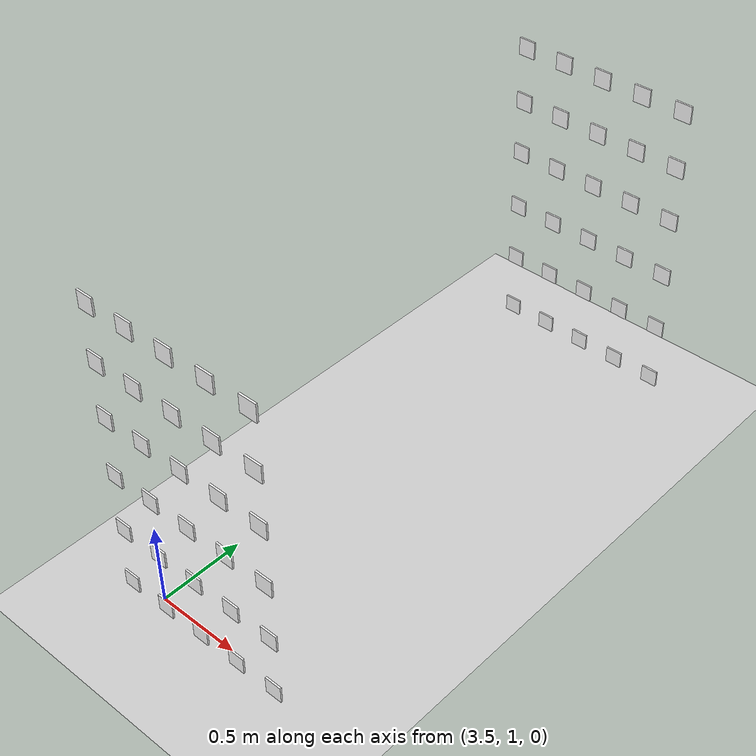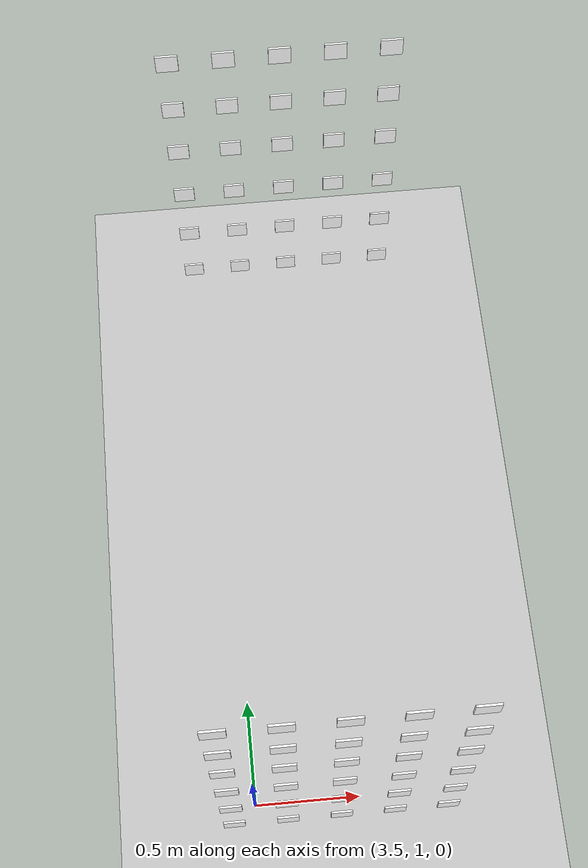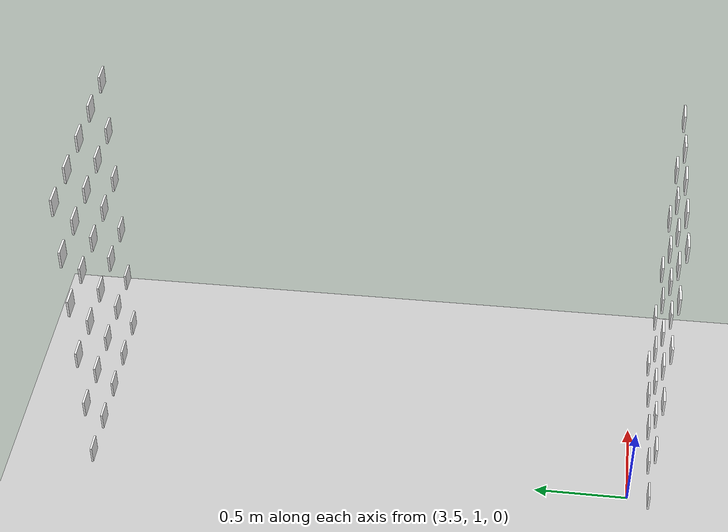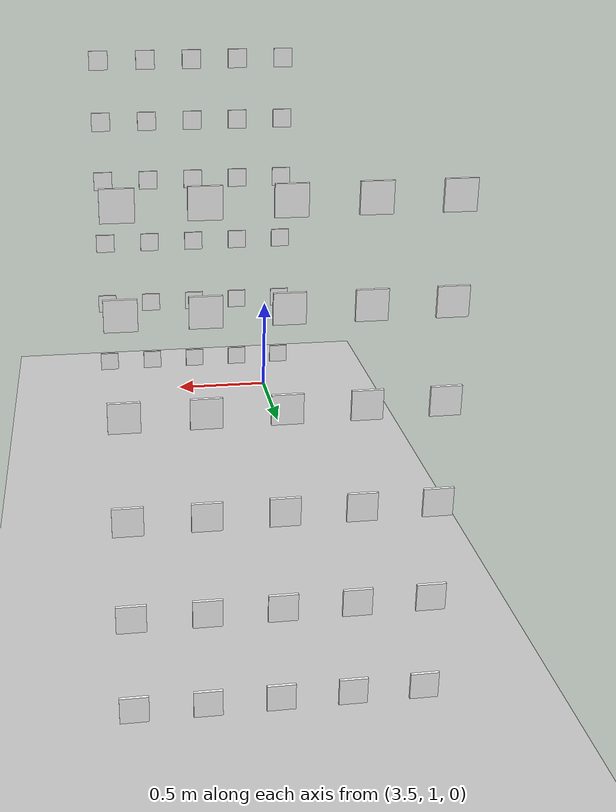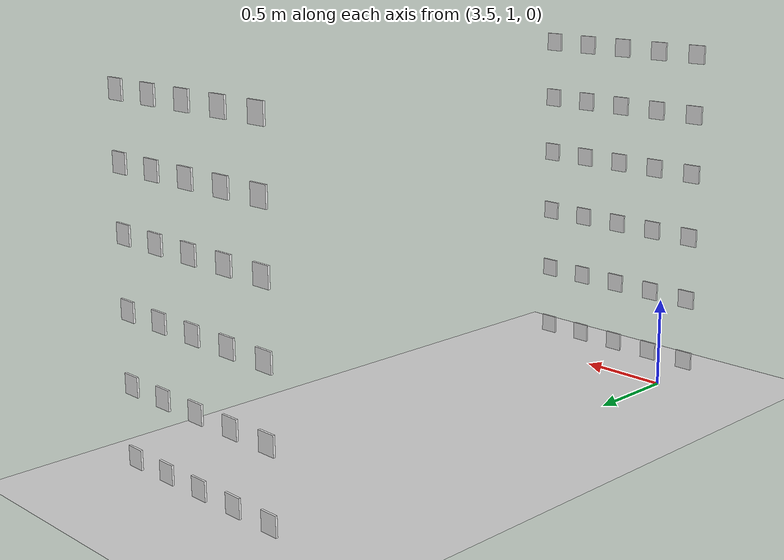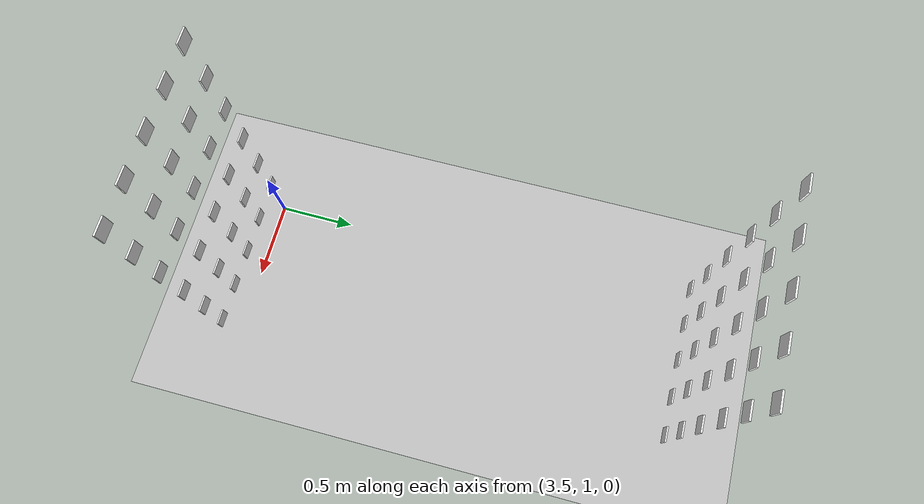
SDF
<sdf version="1.6">
 <world name="default">
  <include><uri>model://ground_plane</uri></include>
  <include><uri>model://sun</uri></include>
  <model name="stag_r1c3_l1_m1">
   <static>true</static>
   <pose>4.4 0.9 0.146 1.5708 0 0</pose>
   <link name="marker_link">
    <collision name="collision"><geometry><box><size>0.1 0.1 0.01</size></box></geometry></collision>
    <visual name="visual">
     <geometry><box><size>0.1 0.1 0.01</size></box></geometry>
     <material>
      <script>
       <uri>model://STag_marker/materials/scripts</uri>
       <uri>model://STag_marker/materials/textures</uri>
       <name>STagMarker/marker_01824</name>
      </script>
      <ambient>1 1 1 1</ambient>
      <diffuse>1 1 1 1</diffuse>
     </material>
     <pose>0 0 0.001 0 0 0</pose>
    </visual>
   </link>
  </model>
  <model name="stag_r1c3_l1_m2">
   <static>true</static>
   <pose>4.15 0.9 0.146 1.5708 0 0</pose>
   <link name="marker_link">
    <collision name="collision"><geometry><box><size>0.1 0.1 0.01</size></box></geometry></collision>
    <visual name="visual">
     <geometry><box><size>0.1 0.1 0.01</size></box></geometry>
     <material>
      <script>
       <uri>model://STag_marker/materials/scripts</uri>
       <uri>model://STag_marker/materials/textures</uri>
       <name>STagMarker/marker_01862</name>
      </script>
      <ambient>1 1 1 1</ambient>
      <diffuse>1 1 1 1</diffuse>
     </material>
     <pose>0 0 0.001 0 0 0</pose>
    </visual>
   </link>
  </model>
  <model name="stag_r1c3_l1_m3">
   <static>true</static>
   <pose>3.9000000000000004 0.9 0.146 1.5708 0 0</pose>
   <link name="marker_link">
    <collision name="collision"><geometry><box><size>0.1 0.1 0.01</size></box></geometry></collision>
    <visual name="visual">
     <geometry><box><size>0.1 0.1 0.01</size></box></geometry>
     <material>
      <script>
       <uri>model://STag_marker/materials/scripts</uri>
       <uri>model://STag_marker/materials/textures</uri>
       <name>STagMarker/marker_01928</name>
      </script>
      <ambient>1 1 1 1</ambient>
      <diffuse>1 1 1 1</diffuse>
     </material>
     <pose>0 0 0.001 0 0 0</pose>
    </visual>
   </link>
  </model>
  <model name="stag_r1c3_l1_m4">
   <static>true</static>
   <pose>3.6500000000000004 0.9 0.146 1.5708 0 0</pose>
   <link name="marker_link">
    <collision name="collision"><geometry><box><size>0.1 0.1 0.01</size></box></geometry></collision>
    <visual name="visual">
     <geometry><box><size>0.1 0.1 0.01</size></box></geometry>
     <material>
      <script>
       <uri>model://STag_marker/materials/scripts</uri>
       <uri>model://STag_marker/materials/textures</uri>
       <name>STagMarker/marker_01999</name>
      </script>
      <ambient>1 1 1 1</ambient>
      <diffuse>1 1 1 1</diffuse>
     </material>
     <pose>0 0 0.001 0 0 0</pose>
    </visual>
   </link>
  </model>
  <model name="stag_r1c3_l1_m5">
   <static>true</static>
   <pose>3.4000000000000004 0.9 0.146 1.5708 0 0</pose>
   <link name="marker_link">
    <collision name="collision"><geometry><box><size>0.1 0.1 0.01</size></box></geometry></collision>
    <visual name="visual">
     <geometry><box><size>0.1 0.1 0.01</size></box></geometry>
     <material>
      <script>
       <uri>model://STag_marker/materials/scripts</uri>
       <uri>model://STag_marker/materials/textures</uri>
       <name>STagMarker/marker_02027</name>
      </script>
      <ambient>1 1 1 1</ambient>
      <diffuse>1 1 1 1</diffuse>
     </material>
     <pose>0 0 0.001 0 0 0</pose>
    </visual>
   </link>
  </model>
  <model name="stag_r1c3_l2_m1">
   <static>true</static>
   <pose>4.4 0.9 0.506 1.5708 0 0</pose>
   <link name="marker_link">
    <collision name="collision"><geometry><box><size>0.1 0.1 0.01</size></box></geometry></collision>
    <visual name="visual">
     <geometry><box><size>0.1 0.1 0.01</size></box></geometry>
     <material>
      <script>
       <uri>model://STag_marker/materials/scripts</uri>
       <uri>model://STag_marker/materials/textures</uri>
       <name>STagMarker/marker_02149</name>
      </script>
      <ambient>1 1 1 1</ambient>
      <diffuse>1 1 1 1</diffuse>
     </material>
     <pose>0 0 0.001 0 0 0</pose>
    </visual>
   </link>
  </model>
  <model name="stag_r1c3_l2_m2">
   <static>true</static>
   <pose>4.15 0.9 0.506 1.5708 0 0</pose>
   <link name="marker_link">
    <collision name="collision"><geometry><box><size>0.1 0.1 0.01</size></box></geometry></collision>
    <visual name="visual">
     <geometry><box><size>0.1 0.1 0.01</size></box></geometry>
     <material>
      <script>
       <uri>model://STag_marker/materials/scripts</uri>
       <uri>model://STag_marker/materials/textures</uri>
       <name>STagMarker/marker_02234</name>
      </script>
      <ambient>1 1 1 1</ambient>
      <diffuse>1 1 1 1</diffuse>
     </material>
     <pose>0 0 0.001 0 0 0</pose>
    </visual>
   </link>
  </model>
  <model name="stag_r1c3_l2_m3">
   <static>true</static>
   <pose>3.9000000000000004 0.9 0.506 1.5708 0 0</pose>
   <link name="marker_link">
    <collision name="collision"><geometry><box><size>0.1 0.1 0.01</size></box></geometry></collision>
    <visual name="visual">
     <geometry><box><size>0.1 0.1 0.01</size></box></geometry>
     <material>
      <script>
       <uri>model://STag_marker/materials/scripts</uri>
       <uri>model://STag_marker/materials/textures</uri>
       <name>STagMarker/marker_02269</name>
      </script>
      <ambient>1 1 1 1</ambient>
      <diffuse>1 1 1 1</diffuse>
     </material>
     <pose>0 0 0.001 0 0 0</pose>
    </visual>
   </link>
  </model>
  <model name="stag_r1c3_l2_m4">
   <static>true</static>
   <pose>3.6500000000000004 0.9 0.506 1.5708 0 0</pose>
   <link name="marker_link">
    <collision name="collision"><geometry><box><size>0.1 0.1 0.01</size></box></geometry></collision>
    <visual name="visual">
     <geometry><box><size>0.1 0.1 0.01</size></box></geometry>
     <material>
      <script>
       <uri>model://STag_marker/materials/scripts</uri>
       <uri>model://STag_marker/materials/textures</uri>
       <name>STagMarker/marker_02275</name>
      </script>
      <ambient>1 1 1 1</ambient>
      <diffuse>1 1 1 1</diffuse>
     </material>
     <pose>0 0 0.001 0 0 0</pose>
    </visual>
   </link>
  </model>
  <model name="stag_r1c3_l2_m5">
   <static>true</static>
   <pose>3.4000000000000004 0.9 0.506 1.5708 0 0</pose>
   <link name="marker_link">
    <collision name="collision"><geometry><box><size>0.1 0.1 0.01</size></box></geometry></collision>
    <visual name="visual">
     <geometry><box><size>0.1 0.1 0.01</size></box></geometry>
     <material>
      <script>
       <uri>model://STag_marker/materials/scripts</uri>
       <uri>model://STag_marker/materials/textures</uri>
       <name>STagMarker/marker_02288</name>
      </script>
      <ambient>1 1 1 1</ambient>
      <diffuse>1 1 1 1</diffuse>
     </material>
     <pose>0 0 0.001 0 0 0</pose>
    </visual>
   </link>
  </model>
  <model name="stag_r1c3_l3_m1">
   <static>true</static>
   <pose>4.4 0.9 0.867 1.5708 0 0</pose>
   <link name="marker_link">
    <collision name="collision"><geometry><box><size>0.1 0.1 0.01</size></box></geometry></collision>
    <visual name="visual">
     <geometry><box><size>0.1 0.1 0.01</size></box></geometry>
     <material>
      <script>
       <uri>model://STag_marker/materials/scripts</uri>
       <uri>model://STag_marker/materials/textures</uri>
       <name>STagMarker/marker_02346</name>
      </script>
      <ambient>1 1 1 1</ambient>
      <diffuse>1 1 1 1</diffuse>
     </material>
     <pose>0 0 0.001 0 0 0</pose>
    </visual>
   </link>
  </model>
  <model name="stag_r1c3_l3_m2">
   <static>true</static>
   <pose>4.15 0.9 0.867 1.5708 0 0</pose>
   <link name="marker_link">
    <collision name="collision"><geometry><box><size>0.1 0.1 0.01</size></box></geometry></collision>
    <visual name="visual">
     <geometry><box><size>0.1 0.1 0.01</size></box></geometry>
     <material>
      <script>
       <uri>model://STag_marker/materials/scripts</uri>
       <uri>model://STag_marker/materials/textures</uri>
       <name>STagMarker/marker_02365</name>
      </script>
      <ambient>1 1 1 1</ambient>
      <diffuse>1 1 1 1</diffuse>
     </material>
     <pose>0 0 0.001 0 0 0</pose>
    </visual>
   </link>
  </model>
  <model name="stag_r1c3_l3_m3">
   <static>true</static>
   <pose>3.9000000000000004 0.9 0.867 1.5708 0 0</pose>
   <link name="marker_link">
    <collision name="collision"><geometry><box><size>0.1 0.1 0.01</size></box></geometry></collision>
    <visual name="visual">
     <geometry><box><size>0.1 0.1 0.01</size></box></geometry>
     <material>
      <script>
       <uri>model://STag_marker/materials/scripts</uri>
       <uri>model://STag_marker/materials/textures</uri>
       <name>STagMarker/marker_00219</name>
      </script>
      <ambient>1 1 1 1</ambient>
      <diffuse>1 1 1 1</diffuse>
     </material>
     <pose>0 0 0.001 0 0 0</pose>
    </visual>
   </link>
  </model>
  <model name="stag_r1c3_l3_m4">
   <static>true</static>
   <pose>3.6500000000000004 0.9 0.867 1.5708 0 0</pose>
   <link name="marker_link">
    <collision name="collision"><geometry><box><size>0.1 0.1 0.01</size></box></geometry></collision>
    <visual name="visual">
     <geometry><box><size>0.1 0.1 0.01</size></box></geometry>
     <material>
      <script>
       <uri>model://STag_marker/materials/scripts</uri>
       <uri>model://STag_marker/materials/textures</uri>
       <name>STagMarker/marker_00261</name>
      </script>
      <ambient>1 1 1 1</ambient>
      <diffuse>1 1 1 1</diffuse>
     </material>
     <pose>0 0 0.001 0 0 0</pose>
    </visual>
   </link>
  </model>
  <model name="stag_r1c3_l3_m5">
   <static>true</static>
   <pose>3.4000000000000004 0.9 0.867 1.5708 0 0</pose>
   <link name="marker_link">
    <collision name="collision"><geometry><box><size>0.1 0.1 0.01</size></box></geometry></collision>
    <visual name="visual">
     <geometry><box><size>0.1 0.1 0.01</size></box></geometry>
     <material>
      <script>
       <uri>model://STag_marker/materials/scripts</uri>
       <uri>model://STag_marker/materials/textures</uri>
       <name>STagMarker/marker_00426</name>
      </script>
      <ambient>1 1 1 1</ambient>
      <diffuse>1 1 1 1</diffuse>
     </material>
     <pose>0 0 0.001 0 0 0</pose>
    </visual>
   </link>
  </model>
  <model name="stag_r1c3_l4_m1">
   <static>true</static>
   <pose>4.4 0.9 1.227 1.5708 0 0</pose>
   <link name="marker_link">
    <collision name="collision"><geometry><box><size>0.1 0.1 0.01</size></box></geometry></collision>
    <visual name="visual">
     <geometry><box><size>0.1 0.1 0.01</size></box></geometry>
     <material>
      <script>
       <uri>model://STag_marker/materials/scripts</uri>
       <uri>model://STag_marker/materials/textures</uri>
       <name>STagMarker/marker_00519</name>
      </script>
      <ambient>1 1 1 1</ambient>
      <diffuse>1 1 1 1</diffuse>
     </material>
     <pose>0 0 0.001 0 0 0</pose>
    </visual>
   </link>
  </model>
  <model name="stag_r1c3_l4_m2">
   <static>true</static>
   <pose>4.15 0.9 1.227 1.5708 0 0</pose>
   <link name="marker_link">
    <collision name="collision"><geometry><box><size>0.1 0.1 0.01</size></box></geometry></collision>
    <visual name="visual">
     <geometry><box><size>0.1 0.1 0.01</size></box></geometry>
     <material>
      <script>
       <uri>model://STag_marker/materials/scripts</uri>
       <uri>model://STag_marker/materials/textures</uri>
       <name>STagMarker/marker_00525</name>
      </script>
      <ambient>1 1 1 1</ambient>
      <diffuse>1 1 1 1</diffuse>
     </material>
     <pose>0 0 0.001 0 0 0</pose>
    </visual>
   </link>
  </model>
  <model name="stag_r1c3_l4_m3">
   <static>true</static>
   <pose>3.9000000000000004 0.9 1.227 1.5708 0 0</pose>
   <link name="marker_link">
    <collision name="collision"><geometry><box><size>0.1 0.1 0.01</size></box></geometry></collision>
    <visual name="visual">
     <geometry><box><size>0.1 0.1 0.01</size></box></geometry>
     <material>
      <script>
       <uri>model://STag_marker/materials/scripts</uri>
       <uri>model://STag_marker/materials/textures</uri>
       <name>STagMarker/marker_00526</name>
      </script>
      <ambient>1 1 1 1</ambient>
      <diffuse>1 1 1 1</diffuse>
     </material>
     <pose>0 0 0.001 0 0 0</pose>
    </visual>
   </link>
  </model>
  <model name="stag_r1c3_l4_m4">
   <static>true</static>
   <pose>3.6500000000000004 0.9 1.227 1.5708 0 0</pose>
   <link name="marker_link">
    <collision name="collision"><geometry><box><size>0.1 0.1 0.01</size></box></geometry></collision>
    <visual name="visual">
     <geometry><box><size>0.1 0.1 0.01</size></box></geometry>
     <material>
      <script>
       <uri>model://STag_marker/materials/scripts</uri>
       <uri>model://STag_marker/materials/textures</uri>
       <name>STagMarker/marker_00537</name>
      </script>
      <ambient>1 1 1 1</ambient>
      <diffuse>1 1 1 1</diffuse>
     </material>
     <pose>0 0 0.001 0 0 0</pose>
    </visual>
   </link>
  </model>
  <model name="stag_r1c3_l4_m5">
   <static>true</static>
   <pose>3.4000000000000004 0.9 1.227 1.5708 0 0</pose>
   <link name="marker_link">
    <collision name="collision"><geometry><box><size>0.1 0.1 0.01</size></box></geometry></collision>
    <visual name="visual">
     <geometry><box><size>0.1 0.1 0.01</size></box></geometry>
     <material>
      <script>
       <uri>model://STag_marker/materials/scripts</uri>
       <uri>model://STag_marker/materials/textures</uri>
       <name>STagMarker/marker_00563</name>
      </script>
      <ambient>1 1 1 1</ambient>
      <diffuse>1 1 1 1</diffuse>
     </material>
     <pose>0 0 0.001 0 0 0</pose>
    </visual>
   </link>
  </model>
  <model name="stag_r1c3_l5_m1">
   <static>true</static>
   <pose>4.4 0.9 1.556 1.5708 0 0</pose>
   <link name="marker_link">
    <collision name="collision"><geometry><box><size>0.1 0.1 0.01</size></box></geometry></collision>
    <visual name="visual">
     <geometry><box><size>0.1 0.1 0.01</size></box></geometry>
     <material>
      <script>
       <uri>model://STag_marker/materials/scripts</uri>
       <uri>model://STag_marker/materials/textures</uri>
       <name>STagMarker/marker_00578</name>
      </script>
      <ambient>1 1 1 1</ambient>
      <diffuse>1 1 1 1</diffuse>
     </material>
     <pose>0 0 0.001 0 0 0</pose>
    </visual>
   </link>
  </model>
  <model name="stag_r1c3_l5_m2">
   <static>true</static>
   <pose>4.15 0.9 1.556 1.5708 0 0</pose>
   <link name="marker_link">
    <collision name="collision"><geometry><box><size>0.1 0.1 0.01</size></box></geometry></collision>
    <visual name="visual">
     <geometry><box><size>0.1 0.1 0.01</size></box></geometry>
     <material>
      <script>
       <uri>model://STag_marker/materials/scripts</uri>
       <uri>model://STag_marker/materials/textures</uri>
       <name>STagMarker/marker_00679</name>
      </script>
      <ambient>1 1 1 1</ambient>
      <diffuse>1 1 1 1</diffuse>
     </material>
     <pose>0 0 0.001 0 0 0</pose>
    </visual>
   </link>
  </model>
  <model name="stag_r1c3_l5_m3">
   <static>true</static>
   <pose>3.9000000000000004 0.9 1.556 1.5708 0 0</pose>
   <link name="marker_link">
    <collision name="collision"><geometry><box><size>0.1 0.1 0.01</size></box></geometry></collision>
    <visual name="visual">
     <geometry><box><size>0.1 0.1 0.01</size></box></geometry>
     <material>
      <script>
       <uri>model://STag_marker/materials/scripts</uri>
       <uri>model://STag_marker/materials/textures</uri>
       <name>STagMarker/marker_00800</name>
      </script>
      <ambient>1 1 1 1</ambient>
      <diffuse>1 1 1 1</diffuse>
     </material>
     <pose>0 0 0.001 0 0 0</pose>
    </visual>
   </link>
  </model>
  <model name="stag_r1c3_l5_m4">
   <static>true</static>
   <pose>3.6500000000000004 0.9 1.556 1.5708 0 0</pose>
   <link name="marker_link">
    <collision name="collision"><geometry><box><size>0.1 0.1 0.01</size></box></geometry></collision>
    <visual name="visual">
     <geometry><box><size>0.1 0.1 0.01</size></box></geometry>
     <material>
      <script>
       <uri>model://STag_marker/materials/scripts</uri>
       <uri>model://STag_marker/materials/textures</uri>
       <name>STagMarker/marker_00848</name>
      </script>
      <ambient>1 1 1 1</ambient>
      <diffuse>1 1 1 1</diffuse>
     </material>
     <pose>0 0 0.001 0 0 0</pose>
    </visual>
   </link>
  </model>
  <model name="stag_r1c3_l5_m5">
   <static>true</static>
   <pose>3.4000000000000004 0.9 1.556 1.5708 0 0</pose>
   <link name="marker_link">
    <collision name="collision"><geometry><box><size>0.1 0.1 0.01</size></box></geometry></collision>
    <visual name="visual">
     <geometry><box><size>0.1 0.1 0.01</size></box></geometry>
     <material>
      <script>
       <uri>model://STag_marker/materials/scripts</uri>
       <uri>model://STag_marker/materials/textures</uri>
       <name>STagMarker/marker_01138</name>
      </script>
      <ambient>1 1 1 1</ambient>
      <diffuse>1 1 1 1</diffuse>
     </material>
     <pose>0 0 0.001 0 0 0</pose>
    </visual>
   </link>
  </model>
  <model name="stag_r1c3_l6_m1">
   <static>true</static>
   <pose>4.4 0.9 1.886 1.5708 0 0</pose>
   <link name="marker_link">
    <collision name="collision"><geometry><box><size>0.1 0.1 0.01</size></box></geometry></collision>
    <visual name="visual">
     <geometry><box><size>0.1 0.1 0.01</size></box></geometry>
     <material>
      <script>
       <uri>model://STag_marker/materials/scripts</uri>
       <uri>model://STag_marker/materials/textures</uri>
       <name>STagMarker/marker_01181</name>
      </script>
      <ambient>1 1 1 1</ambient>
      <diffuse>1 1 1 1</diffuse>
     </material>
     <pose>0 0 0.001 0 0 0</pose>
    </visual>
   </link>
  </model>
  <model name="stag_r1c3_l6_m2">
   <static>true</static>
   <pose>4.15 0.9 1.886 1.5708 0 0</pose>
   <link name="marker_link">
    <collision name="collision"><geometry><box><size>0.1 0.1 0.01</size></box></geometry></collision>
    <visual name="visual">
     <geometry><box><size>0.1 0.1 0.01</size></box></geometry>
     <material>
      <script>
       <uri>model://STag_marker/materials/scripts</uri>
       <uri>model://STag_marker/materials/textures</uri>
       <name>STagMarker/marker_01311</name>
      </script>
      <ambient>1 1 1 1</ambient>
      <diffuse>1 1 1 1</diffuse>
     </material>
     <pose>0 0 0.001 0 0 0</pose>
    </visual>
   </link>
  </model>
  <model name="stag_r1c3_l6_m3">
   <static>true</static>
   <pose>3.9000000000000004 0.9 1.886 1.5708 0 0</pose>
   <link name="marker_link">
    <collision name="collision"><geometry><box><size>0.1 0.1 0.01</size></box></geometry></collision>
    <visual name="visual">
     <geometry><box><size>0.1 0.1 0.01</size></box></geometry>
     <material>
      <script>
       <uri>model://STag_marker/materials/scripts</uri>
       <uri>model://STag_marker/materials/textures</uri>
       <name>STagMarker/marker_01391</name>
      </script>
      <ambient>1 1 1 1</ambient>
      <diffuse>1 1 1 1</diffuse>
     </material>
     <pose>0 0 0.001 0 0 0</pose>
    </visual>
   </link>
  </model>
  <model name="stag_r1c3_l6_m4">
   <static>true</static>
   <pose>3.6500000000000004 0.9 1.886 1.5708 0 0</pose>
   <link name="marker_link">
    <collision name="collision"><geometry><box><size>0.1 0.1 0.01</size></box></geometry></collision>
    <visual name="visual">
     <geometry><box><size>0.1 0.1 0.01</size></box></geometry>
     <material>
      <script>
       <uri>model://STag_marker/materials/scripts</uri>
       <uri>model://STag_marker/materials/textures</uri>
       <name>STagMarker/marker_01396</name>
      </script>
      <ambient>1 1 1 1</ambient>
      <diffuse>1 1 1 1</diffuse>
     </material>
     <pose>0 0 0.001 0 0 0</pose>
    </visual>
   </link>
  </model>
  <model name="stag_r1c3_l6_m5">
   <static>true</static>
   <pose>3.4000000000000004 0.9 1.886 1.5708 0 0</pose>
   <link name="marker_link">
    <collision name="collision"><geometry><box><size>0.1 0.1 0.01</size></box></geometry></collision>
    <visual name="visual">
     <geometry><box><size>0.1 0.1 0.01</size></box></geometry>
     <material>
      <script>
       <uri>model://STag_marker/materials/scripts</uri>
       <uri>model://STag_marker/materials/textures</uri>
       <name>STagMarker/marker_01451</name>
      </script>
      <ambient>1 1 1 1</ambient>
      <diffuse>1 1 1 1</diffuse>
     </material>
     <pose>0 0 0.001 0 0 0</pose>
    </visual>
   </link>
  </model>
  <model name="stag_r2c3_l1_m1">
   <static>true</static>
   <pose>4.4 3.9 0.146 1.5708 0 0</pose>
   <link name="marker_link">
    <collision name="collision"><geometry><box><size>0.1 0.1 0.01</size></box></geometry></collision>
    <visual name="visual">
     <geometry><box><size>0.1 0.1 0.01</size></box></geometry>
     <material>
      <script>
       <uri>model://STag_marker/materials/scripts</uri>
       <uri>model://STag_marker/materials/textures</uri>
       <name>STagMarker/marker_00537</name>
      </script>
      <ambient>1 1 1 1</ambient>
      <diffuse>1 1 1 1</diffuse>
     </material>
     <pose>0 0 0.001 0 0 0</pose>
    </visual>
   </link>
  </model>
  <model name="stag_r2c3_l1_m2">
   <static>true</static>
   <pose>4.15 3.9 0.146 1.5708 0 0</pose>
   <link name="marker_link">
    <collision name="collision"><geometry><box><size>0.1 0.1 0.01</size></box></geometry></collision>
    <visual name="visual">
     <geometry><box><size>0.1 0.1 0.01</size></box></geometry>
     <material>
      <script>
       <uri>model://STag_marker/materials/scripts</uri>
       <uri>model://STag_marker/materials/textures</uri>
       <name>STagMarker/marker_00563</name>
      </script>
      <ambient>1 1 1 1</ambient>
      <diffuse>1 1 1 1</diffuse>
     </material>
     <pose>0 0 0.001 0 0 0</pose>
    </visual>
   </link>
  </model>
  <model name="stag_r2c3_l1_m3">
   <static>true</static>
   <pose>3.9000000000000004 3.9 0.146 1.5708 0 0</pose>
   <link name="marker_link">
    <collision name="collision"><geometry><box><size>0.1 0.1 0.01</size></box></geometry></collision>
    <visual name="visual">
     <geometry><box><size>0.1 0.1 0.01</size></box></geometry>
     <material>
      <script>
       <uri>model://STag_marker/materials/scripts</uri>
       <uri>model://STag_marker/materials/textures</uri>
       <name>STagMarker/marker_00578</name>
      </script>
      <ambient>1 1 1 1</ambient>
      <diffuse>1 1 1 1</diffuse>
     </material>
     <pose>0 0 0.001 0 0 0</pose>
    </visual>
   </link>
  </model>
  <model name="stag_r2c3_l1_m4">
   <static>true</static>
   <pose>3.6500000000000004 3.9 0.146 1.5708 0 0</pose>
   <link name="marker_link">
    <collision name="collision"><geometry><box><size>0.1 0.1 0.01</size></box></geometry></collision>
    <visual name="visual">
     <geometry><box><size>0.1 0.1 0.01</size></box></geometry>
     <material>
      <script>
       <uri>model://STag_marker/materials/scripts</uri>
       <uri>model://STag_marker/materials/textures</uri>
       <name>STagMarker/marker_00679</name>
      </script>
      <ambient>1 1 1 1</ambient>
      <diffuse>1 1 1 1</diffuse>
     </material>
     <pose>0 0 0.001 0 0 0</pose>
    </visual>
   </link>
  </model>
  <model name="stag_r2c3_l1_m5">
   <static>true</static>
   <pose>3.4000000000000004 3.9 0.146 1.5708 0 0</pose>
   <link name="marker_link">
    <collision name="collision"><geometry><box><size>0.1 0.1 0.01</size></box></geometry></collision>
    <visual name="visual">
     <geometry><box><size>0.1 0.1 0.01</size></box></geometry>
     <material>
      <script>
       <uri>model://STag_marker/materials/scripts</uri>
       <uri>model://STag_marker/materials/textures</uri>
       <name>STagMarker/marker_00800</name>
      </script>
      <ambient>1 1 1 1</ambient>
      <diffuse>1 1 1 1</diffuse>
     </material>
     <pose>0 0 0.001 0 0 0</pose>
    </visual>
   </link>
  </model>
  <model name="stag_r2c3_l2_m1">
   <static>true</static>
   <pose>4.4 3.9 0.506 1.5708 0 0</pose>
   <link name="marker_link">
    <collision name="collision"><geometry><box><size>0.1 0.1 0.01</size></box></geometry></collision>
    <visual name="visual">
     <geometry><box><size>0.1 0.1 0.01</size></box></geometry>
     <material>
      <script>
       <uri>model://STag_marker/materials/scripts</uri>
       <uri>model://STag_marker/materials/textures</uri>
       <name>STagMarker/marker_00848</name>
      </script>
      <ambient>1 1 1 1</ambient>
      <diffuse>1 1 1 1</diffuse>
     </material>
     <pose>0 0 0.001 0 0 0</pose>
    </visual>
   </link>
  </model>
  <model name="stag_r2c3_l2_m2">
   <static>true</static>
   <pose>4.15 3.9 0.506 1.5708 0 0</pose>
   <link name="marker_link">
    <collision name="collision"><geometry><box><size>0.1 0.1 0.01</size></box></geometry></collision>
    <visual name="visual">
     <geometry><box><size>0.1 0.1 0.01</size></box></geometry>
     <material>
      <script>
       <uri>model://STag_marker/materials/scripts</uri>
       <uri>model://STag_marker/materials/textures</uri>
       <name>STagMarker/marker_01138</name>
      </script>
      <ambient>1 1 1 1</ambient>
      <diffuse>1 1 1 1</diffuse>
     </material>
     <pose>0 0 0.001 0 0 0</pose>
    </visual>
   </link>
  </model>
  <model name="stag_r2c3_l2_m3">
   <static>true</static>
   <pose>3.9000000000000004 3.9 0.506 1.5708 0 0</pose>
   <link name="marker_link">
    <collision name="collision"><geometry><box><size>0.1 0.1 0.01</size></box></geometry></collision>
    <visual name="visual">
     <geometry><box><size>0.1 0.1 0.01</size></box></geometry>
     <material>
      <script>
       <uri>model://STag_marker/materials/scripts</uri>
       <uri>model://STag_marker/materials/textures</uri>
       <name>STagMarker/marker_01181</name>
      </script>
      <ambient>1 1 1 1</ambient>
      <diffuse>1 1 1 1</diffuse>
     </material>
     <pose>0 0 0.001 0 0 0</pose>
    </visual>
   </link>
  </model>
  <model name="stag_r2c3_l2_m4">
   <static>true</static>
   <pose>3.6500000000000004 3.9 0.506 1.5708 0 0</pose>
   <link name="marker_link">
    <collision name="collision"><geometry><box><size>0.1 0.1 0.01</size></box></geometry></collision>
    <visual name="visual">
     <geometry><box><size>0.1 0.1 0.01</size></box></geometry>
     <material>
      <script>
       <uri>model://STag_marker/materials/scripts</uri>
       <uri>model://STag_marker/materials/textures</uri>
       <name>STagMarker/marker_01311</name>
      </script>
      <ambient>1 1 1 1</ambient>
      <diffuse>1 1 1 1</diffuse>
     </material>
     <pose>0 0 0.001 0 0 0</pose>
    </visual>
   </link>
  </model>
  <model name="stag_r2c3_l2_m5">
   <static>true</static>
   <pose>3.4000000000000004 3.9 0.506 1.5708 0 0</pose>
   <link name="marker_link">
    <collision name="collision"><geometry><box><size>0.1 0.1 0.01</size></box></geometry></collision>
    <visual name="visual">
     <geometry><box><size>0.1 0.1 0.01</size></box></geometry>
     <material>
      <script>
       <uri>model://STag_marker/materials/scripts</uri>
       <uri>model://STag_marker/materials/textures</uri>
       <name>STagMarker/marker_01391</name>
      </script>
      <ambient>1 1 1 1</ambient>
      <diffuse>1 1 1 1</diffuse>
     </material>
     <pose>0 0 0.001 0 0 0</pose>
    </visual>
   </link>
  </model>
  <model name="stag_r2c3_l3_m1">
   <static>true</static>
   <pose>4.4 3.9 0.867 1.5708 0 0</pose>
   <link name="marker_link">
    <collision name="collision"><geometry><box><size>0.1 0.1 0.01</size></box></geometry></collision>
    <visual name="visual">
     <geometry><box><size>0.1 0.1 0.01</size></box></geometry>
     <material>
      <script>
       <uri>model://STag_marker/materials/scripts</uri>
       <uri>model://STag_marker/materials/textures</uri>
       <name>STagMarker/marker_01396</name>
      </script>
      <ambient>1 1 1 1</ambient>
      <diffuse>1 1 1 1</diffuse>
     </material>
     <pose>0 0 0.001 0 0 0</pose>
    </visual>
   </link>
  </model>
  <model name="stag_r2c3_l3_m2">
   <static>true</static>
   <pose>4.15 3.9 0.867 1.5708 0 0</pose>
   <link name="marker_link">
    <collision name="collision"><geometry><box><size>0.1 0.1 0.01</size></box></geometry></collision>
    <visual name="visual">
     <geometry><box><size>0.1 0.1 0.01</size></box></geometry>
     <material>
      <script>
       <uri>model://STag_marker/materials/scripts</uri>
       <uri>model://STag_marker/materials/textures</uri>
       <name>STagMarker/marker_01451</name>
      </script>
      <ambient>1 1 1 1</ambient>
      <diffuse>1 1 1 1</diffuse>
     </material>
     <pose>0 0 0.001 0 0 0</pose>
    </visual>
   </link>
  </model>
  <model name="stag_r2c3_l3_m3">
   <static>true</static>
   <pose>3.9000000000000004 3.9 0.867 1.5708 0 0</pose>
   <link name="marker_link">
    <collision name="collision"><geometry><box><size>0.1 0.1 0.01</size></box></geometry></collision>
    <visual name="visual">
     <geometry><box><size>0.1 0.1 0.01</size></box></geometry>
     <material>
      <script>
       <uri>model://STag_marker/materials/scripts</uri>
       <uri>model://STag_marker/materials/textures</uri>
       <name>STagMarker/marker_01509</name>
      </script>
      <ambient>1 1 1 1</ambient>
      <diffuse>1 1 1 1</diffuse>
     </material>
     <pose>0 0 0.001 0 0 0</pose>
    </visual>
   </link>
  </model>
  <model name="stag_r2c3_l3_m4">
   <static>true</static>
   <pose>3.6500000000000004 3.9 0.867 1.5708 0 0</pose>
   <link name="marker_link">
    <collision name="collision"><geometry><box><size>0.1 0.1 0.01</size></box></geometry></collision>
    <visual name="visual">
     <geometry><box><size>0.1 0.1 0.01</size></box></geometry>
     <material>
      <script>
       <uri>model://STag_marker/materials/scripts</uri>
       <uri>model://STag_marker/materials/textures</uri>
       <name>STagMarker/marker_01579</name>
      </script>
      <ambient>1 1 1 1</ambient>
      <diffuse>1 1 1 1</diffuse>
     </material>
     <pose>0 0 0.001 0 0 0</pose>
    </visual>
   </link>
  </model>
  <model name="stag_r2c3_l3_m5">
   <static>true</static>
   <pose>3.4000000000000004 3.9 0.867 1.5708 0 0</pose>
   <link name="marker_link">
    <collision name="collision"><geometry><box><size>0.1 0.1 0.01</size></box></geometry></collision>
    <visual name="visual">
     <geometry><box><size>0.1 0.1 0.01</size></box></geometry>
     <material>
      <script>
       <uri>model://STag_marker/materials/scripts</uri>
       <uri>model://STag_marker/materials/textures</uri>
       <name>STagMarker/marker_01603</name>
      </script>
      <ambient>1 1 1 1</ambient>
      <diffuse>1 1 1 1</diffuse>
     </material>
     <pose>0 0 0.001 0 0 0</pose>
    </visual>
   </link>
  </model>
  <model name="stag_r2c3_l4_m1">
   <static>true</static>
   <pose>4.4 3.9 1.227 1.5708 0 0</pose>
   <link name="marker_link">
    <collision name="collision"><geometry><box><size>0.1 0.1 0.01</size></box></geometry></collision>
    <visual name="visual">
     <geometry><box><size>0.1 0.1 0.01</size></box></geometry>
     <material>
      <script>
       <uri>model://STag_marker/materials/scripts</uri>
       <uri>model://STag_marker/materials/textures</uri>
       <name>STagMarker/marker_01630</name>
      </script>
      <ambient>1 1 1 1</ambient>
      <diffuse>1 1 1 1</diffuse>
     </material>
     <pose>0 0 0.001 0 0 0</pose>
    </visual>
   </link>
  </model>
  <model name="stag_r2c3_l4_m2">
   <static>true</static>
   <pose>4.15 3.9 1.227 1.5708 0 0</pose>
   <link name="marker_link">
    <collision name="collision"><geometry><box><size>0.1 0.1 0.01</size></box></geometry></collision>
    <visual name="visual">
     <geometry><box><size>0.1 0.1 0.01</size></box></geometry>
     <material>
      <script>
       <uri>model://STag_marker/materials/scripts</uri>
       <uri>model://STag_marker/materials/textures</uri>
       <name>STagMarker/marker_01654</name>
      </script>
      <ambient>1 1 1 1</ambient>
      <diffuse>1 1 1 1</diffuse>
     </material>
     <pose>0 0 0.001 0 0 0</pose>
    </visual>
   </link>
  </model>
  <model name="stag_r2c3_l4_m3">
   <static>true</static>
   <pose>3.9000000000000004 3.9 1.227 1.5708 0 0</pose>
   <link name="marker_link">
    <collision name="collision"><geometry><box><size>0.1 0.1 0.01</size></box></geometry></collision>
    <visual name="visual">
     <geometry><box><size>0.1 0.1 0.01</size></box></geometry>
     <material>
      <script>
       <uri>model://STag_marker/materials/scripts</uri>
       <uri>model://STag_marker/materials/textures</uri>
       <name>STagMarker/marker_01690</name>
      </script>
      <ambient>1 1 1 1</ambient>
      <diffuse>1 1 1 1</diffuse>
     </material>
     <pose>0 0 0.001 0 0 0</pose>
    </visual>
   </link>
  </model>
  <model name="stag_r2c3_l4_m4">
   <static>true</static>
   <pose>3.6500000000000004 3.9 1.227 1.5708 0 0</pose>
   <link name="marker_link">
    <collision name="collision"><geometry><box><size>0.1 0.1 0.01</size></box></geometry></collision>
    <visual name="visual">
     <geometry><box><size>0.1 0.1 0.01</size></box></geometry>
     <material>
      <script>
       <uri>model://STag_marker/materials/scripts</uri>
       <uri>model://STag_marker/materials/textures</uri>
       <name>STagMarker/marker_01824</name>
      </script>
      <ambient>1 1 1 1</ambient>
      <diffuse>1 1 1 1</diffuse>
     </material>
     <pose>0 0 0.001 0 0 0</pose>
    </visual>
   </link>
  </model>
  <model name="stag_r2c3_l4_m5">
   <static>true</static>
   <pose>3.4000000000000004 3.9 1.227 1.5708 0 0</pose>
   <link name="marker_link">
    <collision name="collision"><geometry><box><size>0.1 0.1 0.01</size></box></geometry></collision>
    <visual name="visual">
     <geometry><box><size>0.1 0.1 0.01</size></box></geometry>
     <material>
      <script>
       <uri>model://STag_marker/materials/scripts</uri>
       <uri>model://STag_marker/materials/textures</uri>
       <name>STagMarker/marker_01862</name>
      </script>
      <ambient>1 1 1 1</ambient>
      <diffuse>1 1 1 1</diffuse>
     </material>
     <pose>0 0 0.001 0 0 0</pose>
    </visual>
   </link>
  </model>
  <model name="stag_r2c3_l5_m1">
   <static>true</static>
   <pose>4.4 3.9 1.556 1.5708 0 0</pose>
   <link name="marker_link">
    <collision name="collision"><geometry><box><size>0.1 0.1 0.01</size></box></geometry></collision>
    <visual name="visual">
     <geometry><box><size>0.1 0.1 0.01</size></box></geometry>
     <material>
      <script>
       <uri>model://STag_marker/materials/scripts</uri>
       <uri>model://STag_marker/materials/textures</uri>
       <name>STagMarker/marker_01928</name>
      </script>
      <ambient>1 1 1 1</ambient>
      <diffuse>1 1 1 1</diffuse>
     </material>
     <pose>0 0 0.001 0 0 0</pose>
    </visual>
   </link>
  </model>
  <model name="stag_r2c3_l5_m2">
   <static>true</static>
   <pose>4.15 3.9 1.556 1.5708 0 0</pose>
   <link name="marker_link">
    <collision name="collision"><geometry><box><size>0.1 0.1 0.01</size></box></geometry></collision>
    <visual name="visual">
     <geometry><box><size>0.1 0.1 0.01</size></box></geometry>
     <material>
      <script>
       <uri>model://STag_marker/materials/scripts</uri>
       <uri>model://STag_marker/materials/textures</uri>
       <name>STagMarker/marker_01999</name>
      </script>
      <ambient>1 1 1 1</ambient>
      <diffuse>1 1 1 1</diffuse>
     </material>
     <pose>0 0 0.001 0 0 0</pose>
    </visual>
   </link>
  </model>
  <model name="stag_r2c3_l5_m3">
   <static>true</static>
   <pose>3.9000000000000004 3.9 1.556 1.5708 0 0</pose>
   <link name="marker_link">
    <collision name="collision"><geometry><box><size>0.1 0.1 0.01</size></box></geometry></collision>
    <visual name="visual">
     <geometry><box><size>0.1 0.1 0.01</size></box></geometry>
     <material>
      <script>
       <uri>model://STag_marker/materials/scripts</uri>
       <uri>model://STag_marker/materials/textures</uri>
       <name>STagMarker/marker_02027</name>
      </script>
      <ambient>1 1 1 1</ambient>
      <diffuse>1 1 1 1</diffuse>
     </material>
     <pose>0 0 0.001 0 0 0</pose>
    </visual>
   </link>
  </model>
  <model name="stag_r2c3_l5_m4">
   <static>true</static>
   <pose>3.6500000000000004 3.9 1.556 1.5708 0 0</pose>
   <link name="marker_link">
    <collision name="collision"><geometry><box><size>0.1 0.1 0.01</size></box></geometry></collision>
    <visual name="visual">
     <geometry><box><size>0.1 0.1 0.01</size></box></geometry>
     <material>
      <script>
       <uri>model://STag_marker/materials/scripts</uri>
       <uri>model://STag_marker/materials/textures</uri>
       <name>STagMarker/marker_02149</name>
      </script>
      <ambient>1 1 1 1</ambient>
      <diffuse>1 1 1 1</diffuse>
     </material>
     <pose>0 0 0.001 0 0 0</pose>
    </visual>
   </link>
  </model>
  <model name="stag_r2c3_l5_m5">
   <static>true</static>
   <pose>3.4000000000000004 3.9 1.556 1.5708 0 0</pose>
   <link name="marker_link">
    <collision name="collision"><geometry><box><size>0.1 0.1 0.01</size></box></geometry></collision>
    <visual name="visual">
     <geometry><box><size>0.1 0.1 0.01</size></box></geometry>
     <material>
      <script>
       <uri>model://STag_marker/materials/scripts</uri>
       <uri>model://STag_marker/materials/textures</uri>
       <name>STagMarker/marker_02234</name>
      </script>
      <ambient>1 1 1 1</ambient>
      <diffuse>1 1 1 1</diffuse>
     </material>
     <pose>0 0 0.001 0 0 0</pose>
    </visual>
   </link>
  </model>
  <model name="stag_r2c3_l6_m1">
   <static>true</static>
   <pose>4.4 3.9 1.886 1.5708 0 0</pose>
   <link name="marker_link">
    <collision name="collision"><geometry><box><size>0.1 0.1 0.01</size></box></geometry></collision>
    <visual name="visual">
     <geometry><box><size>0.1 0.1 0.01</size></box></geometry>
     <material>
      <script>
       <uri>model://STag_marker/materials/scripts</uri>
       <uri>model://STag_marker/materials/textures</uri>
       <name>STagMarker/marker_02269</name>
      </script>
      <ambient>1 1 1 1</ambient>
      <diffuse>1 1 1 1</diffuse>
     </material>
     <pose>0 0 0.001 0 0 0</pose>
    </visual>
   </link>
  </model>
  <model name="stag_r2c3_l6_m2">
   <static>true</static>
   <pose>4.15 3.9 1.886 1.5708 0 0</pose>
   <link name="marker_link">
    <collision name="collision"><geometry><box><size>0.1 0.1 0.01</size></box></geometry></collision>
    <visual name="visual">
     <geometry><box><size>0.1 0.1 0.01</size></box></geometry>
     <material>
      <script>
       <uri>model://STag_marker/materials/scripts</uri>
       <uri>model://STag_marker/materials/textures</uri>
       <name>STagMarker/marker_02275</name>
      </script>
      <ambient>1 1 1 1</ambient>
      <diffuse>1 1 1 1</diffuse>
     </material>
     <pose>0 0 0.001 0 0 0</pose>
    </visual>
   </link>
  </model>
  <model name="stag_r2c3_l6_m3">
   <static>true</static>
   <pose>3.9000000000000004 3.9 1.886 1.5708 0 0</pose>
   <link name="marker_link">
    <collision name="collision"><geometry><box><size>0.1 0.1 0.01</size></box></geometry></collision>
    <visual name="visual">
     <geometry><box><size>0.1 0.1 0.01</size></box></geometry>
     <material>
      <script>
       <uri>model://STag_marker/materials/scripts</uri>
       <uri>model://STag_marker/materials/textures</uri>
       <name>STagMarker/marker_02288</name>
      </script>
      <ambient>1 1 1 1</ambient>
      <diffuse>1 1 1 1</diffuse>
     </material>
     <pose>0 0 0.001 0 0 0</pose>
    </visual>
   </link>
  </model>
  <model name="stag_r2c3_l6_m4">
   <static>true</static>
   <pose>3.6500000000000004 3.9 1.886 1.5708 0 0</pose>
   <link name="marker_link">
    <collision name="collision"><geometry><box><size>0.1 0.1 0.01</size></box></geometry></collision>
    <visual name="visual">
     <geometry><box><size>0.1 0.1 0.01</size></box></geometry>
     <material>
      <script>
       <uri>model://STag_marker/materials/scripts</uri>
       <uri>model://STag_marker/materials/textures</uri>
       <name>STagMarker/marker_02346</name>
      </script>
      <ambient>1 1 1 1</ambient>
      <diffuse>1 1 1 1</diffuse>
     </material>
     <pose>0 0 0.001 0 0 0</pose>
    </visual>
   </link>
  </model>
  <model name="stag_r2c3_l6_m5">
   <static>true</static>
   <pose>3.4000000000000004 3.9 1.886 1.5708 0 0</pose>
   <link name="marker_link">
    <collision name="collision"><geometry><box><size>0.1 0.1 0.01</size></box></geometry></collision>
    <visual name="visual">
     <geometry><box><size>0.1 0.1 0.01</size></box></geometry>
     <material>
      <script>
       <uri>model://STag_marker/materials/scripts</uri>
       <uri>model://STag_marker/materials/textures</uri>
       <name>STagMarker/marker_02365</name>
      </script>
      <ambient>1 1 1 1</ambient>
      <diffuse>1 1 1 1</diffuse>
     </material>
     <pose>0 0 0.001 0 0 0</pose>
    </visual>
   </link>
  </model>
 </world>
</sdf>
